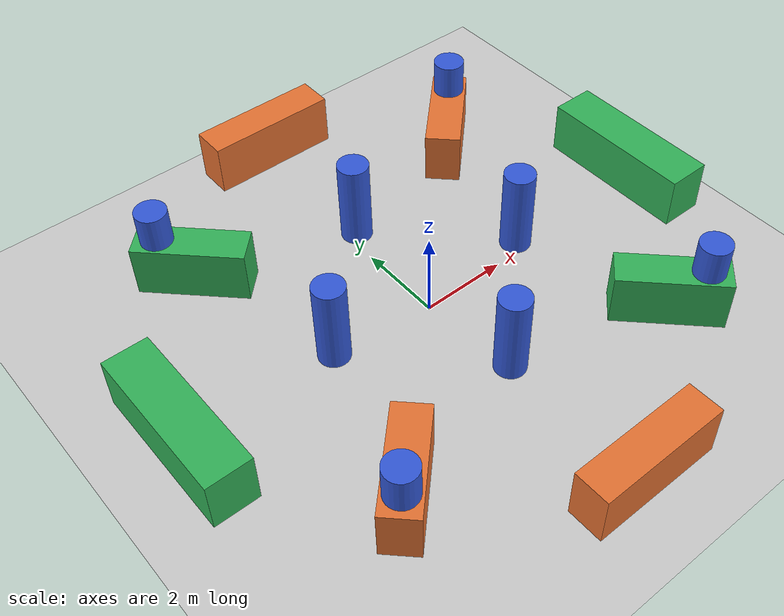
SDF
<?xml version="1.0" encoding="UTF-8"?>
<sdf version="1.9">
  <world name="default">
    <physics type="ode">
      <max_step_size>0.004</max_step_size>
      <real_time_factor>1.0</real_time_factor>
      <real_time_update_rate>250</real_time_update_rate>
    </physics>
    <plugin name="gz::sim::systems::Physics" filename="gz-sim-physics-system"/>
    <plugin name="gz::sim::systems::UserCommands" filename="gz-sim-user-commands-system"/>
    <plugin name="gz::sim::systems::SceneBroadcaster" filename="gz-sim-scene-broadcaster-system"/>
    <plugin name="gz::sim::systems::Contact" filename="gz-sim-contact-system"/>
    <plugin name="gz::sim::systems::Imu" filename="gz-sim-imu-system"/>
    <plugin name="gz::sim::systems::AirPressure" filename="gz-sim-air-pressure-system"/>
    <plugin name="gz::sim::systems::ApplyLinkWrench" filename="gz-sim-apply-link-wrench-system"/>
    <plugin name="gz::sim::systems::NavSat" filename="gz-sim-navsat-system"/>
    <plugin name="gz::sim::systems::Sensors" filename="gz-sim-sensors-system">
      <render_engine>ogre2</render_engine>
    </plugin>
    <gui fullscreen="false">
      <!-- 3D scene -->
      <plugin filename="MinimalScene" name="3D View">
        <gz-gui>
          <title>3D View</title>
          <property type="bool" key="showTitleBar">false</property>
          <property type="string" key="state">docked</property>
        </gz-gui>
        <engine>ogre2</engine>
        <scene>scene</scene>
        <ambient_light>0.4 0.4 0.4</ambient_light>
        <background_color>0.8 0.8 0.8</background_color>
        <camera_pose>-6 0 6 0 0.5 0</camera_pose>
        <camera_clip>
          <near>0.25</near>
          <far>25000</far>
        </camera_clip>
      </plugin>
      <!-- Plugins that add functionality to the scene -->
      <plugin filename="EntityContextMenuPlugin" name="Entity context menu">
        <gz-gui>
          <property key="state" type="string">floating</property>
          <property key="width" type="double">5</property>
          <property key="height" type="double">5</property>
          <property key="showTitleBar" type="bool">false</property>
        </gz-gui>
      </plugin>
      <plugin filename="GzSceneManager" name="Scene Manager">
        <gz-gui>
          <property key="resizable" type="bool">false</property>
          <property key="width" type="double">5</property>
          <property key="height" type="double">5</property>
          <property key="state" type="string">floating</property>
          <property key="showTitleBar" type="bool">false</property>
        </gz-gui>
      </plugin>
      <plugin filename="InteractiveViewControl" name="Interactive view control">
        <gz-gui>
          <property key="resizable" type="bool">false</property>
          <property key="width" type="double">5</property>
          <property key="height" type="double">5</property>
          <property key="state" type="string">floating</property>
          <property key="showTitleBar" type="bool">false</property>
        </gz-gui>
      </plugin>
      <plugin filename="CameraTracking" name="Camera Tracking">
        <gz-gui>
          <property key="resizable" type="bool">false</property>
          <property key="width" type="double">5</property>
          <property key="height" type="double">5</property>
          <property key="state" type="string">floating</property>
          <property key="showTitleBar" type="bool">false</property>
        </gz-gui>
      </plugin>
      <plugin filename="MarkerManager" name="Marker manager">
        <gz-gui>
          <property key="resizable" type="bool">false</property>
          <property key="width" type="double">5</property>
          <property key="height" type="double">5</property>
          <property key="state" type="string">floating</property>
          <property key="showTitleBar" type="bool">false</property>
        </gz-gui>
      </plugin>
      <plugin filename="SelectEntities" name="Select Entities">
        <gz-gui>
          <anchors target="Select entities">
            <line own="right" target="right"/>
            <line own="top" target="top"/>
          </anchors>
          <property key="resizable" type="bool">false</property>
          <property key="width" type="double">5</property>
          <property key="height" type="double">5</property>
          <property key="state" type="string">floating</property>
          <property key="showTitleBar" type="bool">false</property>
        </gz-gui>
      </plugin>
      <plugin filename="VisualizationCapabilities" name="Visualization Capabilities">
        <gz-gui>
          <property key="resizable" type="bool">false</property>
          <property key="width" type="double">5</property>
          <property key="height" type="double">5</property>
          <property key="state" type="string">floating</property>
          <property key="showTitleBar" type="bool">false</property>
        </gz-gui>
      </plugin>
      <plugin filename="Spawn" name="Spawn Entities">
        <gz-gui>
          <anchors target="Select entities">
            <line own="right" target="right"/>
            <line own="top" target="top"/>
          </anchors>
          <property key="resizable" type="bool">false</property>
          <property key="width" type="double">5</property>
          <property key="height" type="double">5</property>
          <property key="state" type="string">floating</property>
          <property key="showTitleBar" type="bool">false</property>
        </gz-gui>
      </plugin>
      <plugin name="World control" filename="WorldControl">
        <gz-gui>
          <title>World control</title>
          <property type="bool" key="showTitleBar">0</property>
          <property type="bool" key="resizable">0</property>
          <property type="double" key="height">72</property>
          <property type="double" key="width">121</property>
          <property type="double" key="z">1</property>
          <property type="string" key="state">floating</property>
          <anchors target="3D View">
            <line own="left" target="left"/>
            <line own="bottom" target="bottom"/>
          </anchors>
        </gz-gui>
        <play_pause>1</play_pause>
        <step>1</step>
        <start_paused>1</start_paused>
      </plugin>
      <plugin name="World stats" filename="WorldStats">
        <gz-gui>
          <title>World stats</title>
          <property type="bool" key="showTitleBar">0</property>
          <property type="bool" key="resizable">0</property>
          <property type="double" key="height">110</property>
          <property type="double" key="width">290</property>
          <property type="double" key="z">1</property>
          <property type="string" key="state">floating</property>
          <anchors target="3D View">
            <line own="right" target="right"/>
            <line own="bottom" target="bottom"/>
          </anchors>
        </gz-gui>
        <sim_time>1</sim_time>
        <real_time>1</real_time>
        <real_time_factor>1</real_time_factor>
        <iterations>1</iterations>
      </plugin>
      <plugin name="Entity tree" filename="EntityTree"/>
    </gui>
    <gravity>0 0 -9.8</gravity>
    <magnetic_field>6e-06 2.3e-05 -4.2e-05</magnetic_field>
    <atmosphere type="adiabatic"/>
    <scene>
      <grid>false</grid>
      <ambient>0.4 0.4 0.4 1</ambient>
      <background>0.7 0.7 0.7 1</background>
      <shadows>true</shadows>
    </scene>
    <model name="ground_plane">
      <static>true</static>
      <link name="link">
        <collision name="collision">
          <geometry>
            <plane>
              <normal>0 0 1</normal>
              <size>1 1</size>
            </plane>
          </geometry>
          <surface>
            <friction>
              <ode/>
            </friction>
            <bounce/>
            <contact/>
          </surface>
        </collision>
        <visual name="visual">
          <geometry>
            <plane>
              <normal>0 0 1</normal>
              <size>100 100</size>
            </plane>
          </geometry>
          <material>
            <ambient>0.8 0.8 0.8 1</ambient>
            <diffuse>0.8 0.8 0.8 1</diffuse>
            <specular>0.8 0.8 0.8 1</specular>
          </material>
        </visual>
        <pose>0 0 0 0 -0 0</pose>
        <inertial>
          <pose>0 0 0 0 -0 0</pose>
          <mass>1</mass>
          <inertia>
            <ixx>1</ixx>
            <ixy>0</ixy>
            <ixz>0</ixz>
            <iyy>1</iyy>
            <iyz>0</iyz>
            <izz>1</izz>
          </inertia>
        </inertial>
        <enable_wind>false</enable_wind>
      </link>
      <pose>0 0 0 0 -0 0</pose>
      <self_collide>false</self_collide>
    </model>
    <model name="nav_pillar_1">
      <static>true</static>
      <pose>4 4 1.4 0 0 0</pose>
      <link name="link">
        <collision name="collision">
          <geometry>
            <cylinder>
              <radius>0.35</radius>
              <length>2.0</length>
            </cylinder>
          </geometry>
        </collision>
        <visual name="visual">
          <geometry>
            <cylinder>
              <radius>0.35</radius>
              <length>2.0</length>
            </cylinder>
          </geometry>
          <material>
            <ambient>0.20 0.35 0.85 1</ambient>
            <diffuse>0.20 0.35 0.85 1</diffuse>
          </material>
        </visual>
      </link>
    </model>
    <model name="nav_pillar_2">
      <static>true</static>
      <pose>4 -4 1.4 0 0 0</pose>
      <link name="link">
        <collision name="collision">
          <geometry>
            <cylinder>
              <radius>0.35</radius>
              <length>2.0</length>
            </cylinder>
          </geometry>
        </collision>
        <visual name="visual">
          <geometry>
            <cylinder>
              <radius>0.35</radius>
              <length>2.0</length>
            </cylinder>
          </geometry>
          <material>
            <ambient>0.20 0.35 0.85 1</ambient>
            <diffuse>0.20 0.35 0.85 1</diffuse>
          </material>
        </visual>
      </link>
    </model>
    <model name="nav_pillar_3">
      <static>true</static>
      <pose>-4 4 1.4 0 0 0</pose>
      <link name="link">
        <collision name="collision">
          <geometry>
            <cylinder>
              <radius>0.35</radius>
              <length>2.0</length>
            </cylinder>
          </geometry>
        </collision>
        <visual name="visual">
          <geometry>
            <cylinder>
              <radius>0.35</radius>
              <length>2.0</length>
            </cylinder>
          </geometry>
          <material>
            <ambient>0.20 0.35 0.85 1</ambient>
            <diffuse>0.20 0.35 0.85 1</diffuse>
          </material>
        </visual>
      </link>
    </model>
    <model name="nav_pillar_4">
      <static>true</static>
      <pose>-4 -4 1.4 0 0 0</pose>
      <link name="link">
        <collision name="collision">
          <geometry>
            <cylinder>
              <radius>0.35</radius>
              <length>2.0</length>
            </cylinder>
          </geometry>
        </collision>
        <visual name="visual">
          <geometry>
            <cylinder>
              <radius>0.35</radius>
              <length>2.0</length>
            </cylinder>
          </geometry>
          <material>
            <ambient>0.20 0.35 0.85 1</ambient>
            <diffuse>0.20 0.35 0.85 1</diffuse>
          </material>
        </visual>
      </link>
    </model>
    <model name="nav_block_1">
      <static>true</static>
      <pose>0 6 1.0 0 0 0</pose>
      <link name="link">
        <collision name="collision">
          <geometry>
            <box>
              <size>3.0 0.8 1.2</size>
            </box>
          </geometry>
        </collision>
        <visual name="visual">
          <geometry>
            <box>
              <size>3.0 0.8 1.2</size>
            </box>
          </geometry>
          <material>
            <ambient>0.90 0.45 0.20 1</ambient>
            <diffuse>0.90 0.45 0.20 1</diffuse>
          </material>
        </visual>
      </link>
    </model>
    <model name="nav_block_2">
      <static>true</static>
      <pose>0 -6 1.0 0 0 0</pose>
      <link name="link">
        <collision name="collision">
          <geometry>
            <box>
              <size>3.0 0.8 1.2</size>
            </box>
          </geometry>
        </collision>
        <visual name="visual">
          <geometry>
            <box>
              <size>3.0 0.8 1.2</size>
            </box>
          </geometry>
          <material>
            <ambient>0.90 0.45 0.20 1</ambient>
            <diffuse>0.90 0.45 0.20 1</diffuse>
          </material>
        </visual>
      </link>
    </model>
    <model name="nav_block_3">
      <static>true</static>
      <pose>6 0 1.0 0 0 1.57079632679</pose>
      <link name="link">
        <collision name="collision">
          <geometry>
            <box>
              <size>3.6 1.0 1.2</size>
            </box>
          </geometry>
        </collision>
        <visual name="visual">
          <geometry>
            <box>
              <size>3.6 1.0 1.2</size>
            </box>
          </geometry>
          <material>
            <ambient>0.20 0.70 0.35 1</ambient>
            <diffuse>0.20 0.70 0.35 1</diffuse>
          </material>
        </visual>
      </link>
    </model>
    <model name="nav_block_4">
      <static>true</static>
      <pose>-6 0 1.0 0 0 1.57079632679</pose>
      <link name="link">
        <collision name="collision">
          <geometry>
            <box>
              <size>3.6 1.0 1.2</size>
            </box>
          </geometry>
        </collision>
        <visual name="visual">
          <geometry>
            <box>
              <size>3.6 1.0 1.2</size>
            </box>
          </geometry>
          <material>
            <ambient>0.20 0.70 0.35 1</ambient>
            <diffuse>0.20 0.70 0.35 1</diffuse>
          </material>
        </visual>
      </link>
    </model>
    <model name="nav_pillar_5">
      <static>true</static>
      <pose>2.5 0 1.4 0 0 0</pose>
      <link name="link">
        <collision name="collision">
          <geometry>
            <cylinder>
              <radius>0.35</radius>
              <length>2.0</length>
            </cylinder>
          </geometry>
        </collision>
        <visual name="visual">
          <geometry>
            <cylinder>
              <radius>0.35</radius>
              <length>2.0</length>
            </cylinder>
          </geometry>
          <material>
            <ambient>0.20 0.35 0.85 1</ambient>
            <diffuse>0.20 0.35 0.85 1</diffuse>
          </material>
        </visual>
      </link>
    </model>
    <model name="nav_pillar_6">
      <static>true</static>
      <pose>-2.5 0 1.4 0 0 0</pose>
      <link name="link">
        <collision name="collision">
          <geometry>
            <cylinder>
              <radius>0.35</radius>
              <length>2.0</length>
            </cylinder>
          </geometry>
        </collision>
        <visual name="visual">
          <geometry>
            <cylinder>
              <radius>0.35</radius>
              <length>2.0</length>
            </cylinder>
          </geometry>
          <material>
            <ambient>0.20 0.35 0.85 1</ambient>
            <diffuse>0.20 0.35 0.85 1</diffuse>
          </material>
        </visual>
      </link>
    </model>
    <model name="nav_pillar_7">
      <static>true</static>
      <pose>0 2.5 1.4 0 0 0</pose>
      <link name="link">
        <collision name="collision">
          <geometry>
            <cylinder>
              <radius>0.35</radius>
              <length>2.0</length>
            </cylinder>
          </geometry>
        </collision>
        <visual name="visual">
          <geometry>
            <cylinder>
              <radius>0.35</radius>
              <length>2.0</length>
            </cylinder>
          </geometry>
          <material>
            <ambient>0.20 0.35 0.85 1</ambient>
            <diffuse>0.20 0.35 0.85 1</diffuse>
          </material>
        </visual>
      </link>
    </model>
    <model name="nav_pillar_8">
      <static>true</static>
      <pose>0 -2.5 1.4 0 0 0</pose>
      <link name="link">
        <collision name="collision">
          <geometry>
            <cylinder>
              <radius>0.35</radius>
              <length>2.0</length>
            </cylinder>
          </geometry>
        </collision>
        <visual name="visual">
          <geometry>
            <cylinder>
              <radius>0.35</radius>
              <length>2.0</length>
            </cylinder>
          </geometry>
          <material>
            <ambient>0.20 0.35 0.85 1</ambient>
            <diffuse>0.20 0.35 0.85 1</diffuse>
          </material>
        </visual>
      </link>
    </model>
    <model name="nav_block_5">
      <static>true</static>
      <pose>3.5 3.5 1.0 0 0 0.78539816339</pose>
      <link name="link">
        <collision name="collision">
          <geometry>
            <box>
              <size>2.4 0.8 1.2</size>
            </box>
          </geometry>
        </collision>
        <visual name="visual">
          <geometry>
            <box>
              <size>2.4 0.8 1.2</size>
            </box>
          </geometry>
          <material>
            <ambient>0.90 0.45 0.20 1</ambient>
            <diffuse>0.90 0.45 0.20 1</diffuse>
          </material>
        </visual>
      </link>
    </model>
    <model name="nav_block_6">
      <static>true</static>
      <pose>-3.5 -3.5 1.0 0 0 0.78539816339</pose>
      <link name="link">
        <collision name="collision">
          <geometry>
            <box>
              <size>2.4 0.8 1.2</size>
            </box>
          </geometry>
        </collision>
        <visual name="visual">
          <geometry>
            <box>
              <size>2.4 0.8 1.2</size>
            </box>
          </geometry>
          <material>
            <ambient>0.90 0.45 0.20 1</ambient>
            <diffuse>0.90 0.45 0.20 1</diffuse>
          </material>
        </visual>
      </link>
    </model>
    <model name="nav_block_7">
      <static>true</static>
      <pose>-3.5 3.5 1.0 0 0 -0.78539816339</pose>
      <link name="link">
        <collision name="collision">
          <geometry>
            <box>
              <size>2.4 0.8 1.2</size>
            </box>
          </geometry>
        </collision>
        <visual name="visual">
          <geometry>
            <box>
              <size>2.4 0.8 1.2</size>
            </box>
          </geometry>
          <material>
            <ambient>0.20 0.70 0.35 1</ambient>
            <diffuse>0.20 0.70 0.35 1</diffuse>
          </material>
        </visual>
      </link>
    </model>
    <model name="nav_block_8">
      <static>true</static>
      <pose>3.5 -3.5 1.0 0 0 -0.78539816339</pose>
      <link name="link">
        <collision name="collision">
          <geometry>
            <box>
              <size>2.4 0.8 1.2</size>
            </box>
          </geometry>
        </collision>
        <visual name="visual">
          <geometry>
            <box>
              <size>2.4 0.8 1.2</size>
            </box>
          </geometry>
          <material>
            <ambient>0.20 0.70 0.35 1</ambient>
            <diffuse>0.20 0.70 0.35 1</diffuse>
          </material>
        </visual>
      </link>
    </model>
    <light name="sunUTC" type="directional">
      <pose>0 0 500 0 -0 0</pose>
      <cast_shadows>true</cast_shadows>
      <intensity>1</intensity>
      <direction>0.001 0.625 -0.78</direction>
      <diffuse>0.904 0.904 0.904 1</diffuse>
      <specular>0.271 0.271 0.271 1</specular>
      <attenuation>
        <range>2000</range>
        <linear>0</linear>
        <constant>1</constant>
        <quadratic>0</quadratic>
      </attenuation>
      <spot>
        <inner_angle>0</inner_angle>
        <outer_angle>0</outer_angle>
        <falloff>0</falloff>
      </spot>
    </light>
    <spherical_coordinates>
      <surface_model>EARTH_WGS84</surface_model>
      <world_frame_orientation>ENU</world_frame_orientation>
      <latitude_deg>47.397971057728974</latitude_deg>
      <longitude_deg> 8.546163739800146</longitude_deg>
      <elevation>0</elevation>
    </spherical_coordinates>
  </world>
</sdf>
